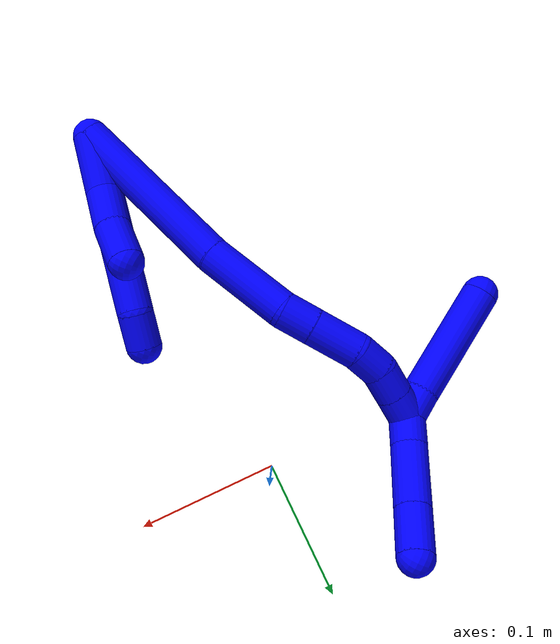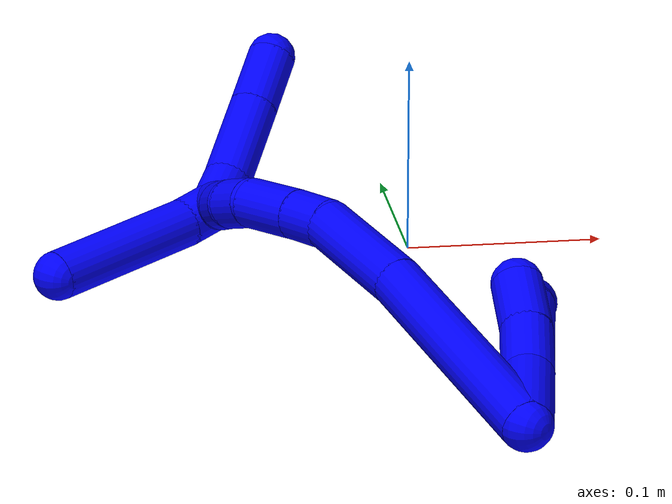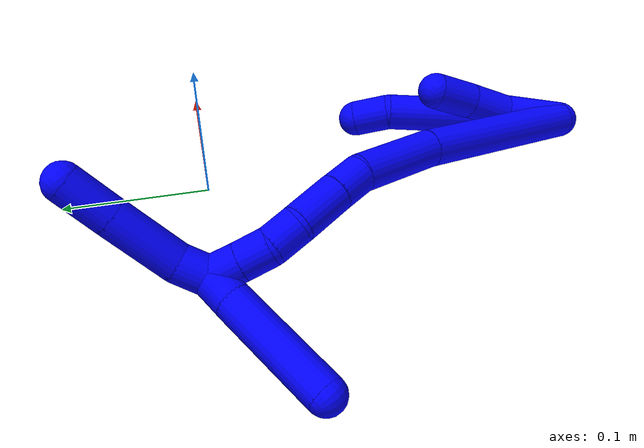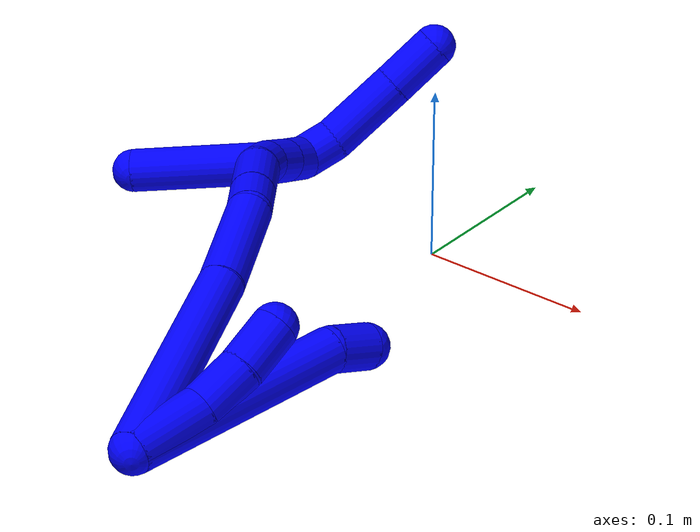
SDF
<sdf version="1.7">
 <world name="default">
  <model name="1">
   <static>0</static>
   <link name="1">
    <collision name="collision-cylinder-e_1_2_8">
     <pose>0.007407 0.047215 -0.040642 -2.28153 0.118342 -0.256896</pose>
     <geometry><cylinder><radius>0.0125</radius><length>0.125474</length></cylinder></geometry>
     <surface>
      <friction><ode><mu>1.16</mu><mu2>1.16</mu2><slip1>0</slip1><slip2>0</slip2></ode></friction>
      <contact><ode><kp>1e+06</kp><kd>1</kd><max_vel>0</max_vel><min_depth>0.001</min_depth></ode></contact>
     </surface>
    </collision>
    <visual name="visual-cylinder-e_1_2_8">
     <pose>0.007407 0.047215 -0.040642 -2.28153 0.118342 -0.256896</pose>
     <geometry><cylinder><radius>0.0125</radius><length>0.125474</length></cylinder></geometry>
     <material><ambient>0 0 1 1</ambient></material>
    </visual>
    <collision name="collision-cylinder-e_2_8_6">
     <pose>0.020325 0.102675 -0.088498 -2.28946 0.466049 -0.963625</pose>
     <geometry><cylinder><radius>0.0125</radius><length>0.024526</length></cylinder></geometry>
     <surface>
      <friction><ode><mu>1.16</mu><mu2>1.16</mu2><slip1>0</slip1><slip2>0</slip2></ode></friction>
      <contact><ode><kp>1e+06</kp><kd>1</kd><max_vel>0</max_vel><min_depth>0.001</min_depth></ode></contact>
     </surface>
    </collision>
    <visual name="visual-cylinder-e_2_8_6">
     <pose>0.020325 0.102675 -0.088498 -2.28946 0.466049 -0.963625</pose>
     <geometry><cylinder><radius>0.0125</radius><length>0.024526</length></cylinder></geometry>
     <material><ambient>0 0 1 1</ambient></material>
    </visual>
    <collision name="collision-cylinder-e_1_2_9">
     <pose>0.000329 0.01603 -0.013361 -2.26563 0.015756 -0.033642</pose>
     <geometry><cylinder><radius>0.0125</radius><length>0.041741</length></cylinder></geometry>
     <surface>
      <friction><ode><mu>1.16</mu><mu2>1.16</mu2><slip1>0</slip1><slip2>0</slip2></ode></friction>
      <contact><ode><kp>1e+06</kp><kd>1</kd><max_vel>0</max_vel><min_depth>0.001</min_depth></ode></contact>
     </surface>
    </collision>
    <visual name="visual-cylinder-e_1_2_9">
     <pose>0.000329 0.01603 -0.013361 -2.26563 0.015756 -0.033642</pose>
     <geometry><cylinder><radius>0.0125</radius><length>0.041741</length></cylinder></geometry>
     <material><ambient>0 0 1 1</ambient></material>
    </visual>
    <collision name="collision-cylinder-e_2_9_10">
     <pose>-0.002686 0.042902 -0.035887 -2.27255 -0.231312 0.490557</pose>
     <geometry><cylinder><radius>0.0125</radius><length>0.029171</length></cylinder></geometry>
     <surface>
      <friction><ode><mu>1.16</mu><mu2>1.16</mu2><slip1>0</slip1><slip2>0</slip2></ode></friction>
      <contact><ode><kp>1e+06</kp><kd>1</kd><max_vel>0</max_vel><min_depth>0.001</min_depth></ode></contact>
     </surface>
    </collision>
    <visual name="visual-cylinder-e_2_9_10">
     <pose>-0.002686 0.042902 -0.035887 -2.27255 -0.231312 0.490557</pose>
     <geometry><cylinder><radius>0.0125</radius><length>0.029171</length></cylinder></geometry>
     <material><ambient>0 0 1 1</ambient></material>
    </visual>
    <collision name="collision-cylinder-e_3_10_5">
     <pose>-0.010193 0.063175 -0.055311 -2.39828 -0.290323 0.717655</pose>
     <geometry><cylinder><radius>0.0125</radius><length>0.029088</length></cylinder></geometry>
     <surface>
      <friction><ode><mu>1.16</mu><mu2>1.16</mu2><slip1>0</slip1><slip2>0</slip2></ode></friction>
      <contact><ode><kp>1e+06</kp><kd>1</kd><max_vel>0</max_vel><min_depth>0.001</min_depth></ode></contact>
     </surface>
    </collision>
    <visual name="visual-cylinder-e_3_10_5">
     <pose>-0.010193 0.063175 -0.055311 -2.39828 -0.290323 0.717655</pose>
     <geometry><cylinder><radius>0.0125</radius><length>0.029088</length></cylinder></geometry>
     <material><ambient>0 0 1 1</ambient></material>
    </visual>
    <collision name="collision-cylinder-e_1_2_11">
     <pose>-0.008257 0.021761 -0.057332 -2.77883 -0.133846 0.700749</pose>
     <geometry><cylinder><radius>0.0125</radius><length>0.123753</length></cylinder></geometry>
     <surface>
      <friction><ode><mu>1.16</mu><mu2>1.16</mu2><slip1>0</slip1><slip2>0</slip2></ode></friction>
      <contact><ode><kp>1e+06</kp><kd>1</kd><max_vel>0</max_vel><min_depth>0.001</min_depth></ode></contact>
     </surface>
    </collision>
    <visual name="visual-cylinder-e_1_2_11">
     <pose>-0.008257 0.021761 -0.057332 -2.77883 -0.133846 0.700749</pose>
     <geometry><cylinder><radius>0.0125</radius><length>0.123753</length></cylinder></geometry>
     <material><ambient>0 0 1 1</ambient></material>
    </visual>
    <collision name="collision-cylinder-e_2_11_12">
     <pose>-0.020218 0.050859 -0.143515 -2.89257 -0.12378 0.919485</pose>
     <geometry><cylinder><radius>0.0125</radius><length>0.059997</length></cylinder></geometry>
     <surface>
      <friction><ode><mu>1.16</mu><mu2>1.16</mu2><slip1>0</slip1><slip2>0</slip2></ode></friction>
      <contact><ode><kp>1e+06</kp><kd>1</kd><max_vel>0</max_vel><min_depth>0.001</min_depth></ode></contact>
     </surface>
    </collision>
    <visual name="visual-cylinder-e_2_11_12">
     <pose>-0.020218 0.050859 -0.143515 -2.89257 -0.12378 0.919485</pose>
     <geometry><cylinder><radius>0.0125</radius><length>0.059997</length></cylinder></geometry>
     <material><ambient>0 0 1 1</ambient></material>
    </visual>
    <collision name="collision-cylinder-e_3_12_13">
     <pose>-0.023324 0.058651 -0.183492 -3.10067 0.05361 -1.83773</pose>
     <geometry><cylinder><radius>0.0125</radius><length>0.022303</length></cylinder></geometry>
     <surface>
      <friction><ode><mu>1.16</mu><mu2>1.16</mu2><slip1>0</slip1><slip2>0</slip2></ode></friction>
      <contact><ode><kp>1e+06</kp><kd>1</kd><max_vel>0</max_vel><min_depth>0.001</min_depth></ode></contact>
     </surface>
    </collision>
    <visual name="visual-cylinder-e_3_12_13">
     <pose>-0.023324 0.058651 -0.183492 -3.10067 0.05361 -1.83773</pose>
     <geometry><cylinder><radius>0.0125</radius><length>0.022303</length></cylinder></geometry>
     <material><ambient>0 0 1 1</ambient></material>
    </visual>
    <collision name="collision-cylinder-e_4_13_14">
     <pose>-0.021176 0.059584 -0.211064 -3.11255 0.093993 -2.54254</pose>
     <geometry><cylinder><radius>0.0125</radius><length>0.033053</length></cylinder></geometry>
     <surface>
      <friction><ode><mu>1.16</mu><mu2>1.16</mu2><slip1>0</slip1><slip2>0</slip2></ode></friction>
      <contact><ode><kp>1e+06</kp><kd>1</kd><max_vel>0</max_vel><min_depth>0.001</min_depth></ode></contact>
     </surface>
    </collision>
    <visual name="visual-cylinder-e_4_13_14">
     <pose>-0.021176 0.059584 -0.211064 -3.11255 0.093993 -2.54254</pose>
     <geometry><cylinder><radius>0.0125</radius><length>0.033053</length></cylinder></geometry>
     <material><ambient>0 0 1 1</ambient></material>
    </visual>
    <collision name="collision-cylinder-e_5_14_15">
     <pose>-0.015943 0.061511 -0.236942 -2.98914 0.368265 -2.36326</pose>
     <geometry><cylinder><radius>0.0125</radius><length>0.020455</length></cylinder></geometry>
     <surface>
      <friction><ode><mu>1.16</mu><mu2>1.16</mu2><slip1>0</slip1><slip2>0</slip2></ode></friction>
      <contact><ode><kp>1e+06</kp><kd>1</kd><max_vel>0</max_vel><min_depth>0.001</min_depth></ode></contact>
     </surface>
    </collision>
    <visual name="visual-cylinder-e_5_14_15">
     <pose>-0.015943 0.061511 -0.236942 -2.98914 0.368265 -2.36326</pose>
     <geometry><cylinder><radius>0.0125</radius><length>0.020455</length></cylinder></geometry>
     <material><ambient>0 0 1 1</ambient></material>
    </visual>
    <collision name="collision-cylinder-e_6_15_16">
     <pose>-0.007534 0.066949 -0.254441 -2.68244 0.483654 -1.62474</pose>
     <geometry><cylinder><radius>0.0125</radius><length>0.020332</length></cylinder></geometry>
     <surface>
      <friction><ode><mu>1.16</mu><mu2>1.16</mu2><slip1>0</slip1><slip2>0</slip2></ode></friction>
      <contact><ode><kp>1e+06</kp><kd>1</kd><max_vel>0</max_vel><min_depth>0.001</min_depth></ode></contact>
     </surface>
    </collision>
    <visual name="visual-cylinder-e_6_15_16">
     <pose>-0.007534 0.066949 -0.254441 -2.68244 0.483654 -1.62474</pose>
     <geometry><cylinder><radius>0.0125</radius><length>0.020332</length></cylinder></geometry>
     <material><ambient>0 0 1 1</ambient></material>
    </visual>
    <collision name="collision-cylinder-e_7_16_1">
     <pose>0.001628 0.075106 -0.270511 -2.66134 0.456764 -1.5188</pose>
     <geometry><cylinder><radius>0.0125</radius><length>0.020108</length></cylinder></geometry>
     <surface>
      <friction><ode><mu>1.16</mu><mu2>1.16</mu2><slip1>0</slip1><slip2>0</slip2></ode></friction>
      <contact><ode><kp>1e+06</kp><kd>1</kd><max_vel>0</max_vel><min_depth>0.001</min_depth></ode></contact>
     </surface>
    </collision>
    <visual name="visual-cylinder-e_7_16_1">
     <pose>0.001628 0.075106 -0.270511 -2.66134 0.456764 -1.5188</pose>
     <geometry><cylinder><radius>0.0125</radius><length>0.020108</length></cylinder></geometry>
     <material><ambient>0 0 1 1</ambient></material>
    </visual>
    <collision name="collision-cylinder-e_1_1_17">
     <pose>0.00606 0.068935 -0.279422 1.65841 -0.000216 -0.000236</pose>
     <geometry><cylinder><radius>0.0125</radius><length>0.020759</length></cylinder></geometry>
     <surface>
      <friction><ode><mu>1.16</mu><mu2>1.16</mu2><slip1>0</slip1><slip2>0</slip2></ode></friction>
      <contact><ode><kp>1e+06</kp><kd>1</kd><max_vel>0</max_vel><min_depth>0.001</min_depth></ode></contact>
     </surface>
    </collision>
    <visual name="visual-cylinder-e_1_1_17">
     <pose>0.00606 0.068935 -0.279422 1.65841 -0.000216 -0.000236</pose>
     <geometry><cylinder><radius>0.0125</radius><length>0.020759</length></cylinder></geometry>
     <material><ambient>0 0 1 1</ambient></material>
    </visual>
    <collision name="collision-cylinder-e_2_17_4">
     <pose>0.001991 0.019412 -0.284559 1.67831 -0.102829 -0.1145</pose>
     <geometry><cylinder><radius>0.0125</radius><length>0.079241</length></cylinder></geometry>
     <surface>
      <friction><ode><mu>1.16</mu><mu2>1.16</mu2><slip1>0</slip1><slip2>0</slip2></ode></friction>
      <contact><ode><kp>1e+06</kp><kd>1</kd><max_vel>0</max_vel><min_depth>0.001</min_depth></ode></contact>
     </surface>
    </collision>
    <visual name="visual-cylinder-e_2_17_4">
     <pose>0.001991 0.019412 -0.284559 1.67831 -0.102829 -0.1145</pose>
     <geometry><cylinder><radius>0.0125</radius><length>0.079241</length></cylinder></geometry>
     <material><ambient>0 0 1 1</ambient></material>
    </visual>
    <collision name="collision-cylinder-e_1_1_18">
     <pose>0.004465 0.088514 -0.282993 -2.02226 -0.154294 0.245535</pose>
     <geometry><cylinder><radius>0.0125</radius><length>0.020783</length></cylinder></geometry>
     <surface>
      <friction><ode><mu>1.16</mu><mu2>1.16</mu2><slip1>0</slip1><slip2>0</slip2></ode></friction>
      <contact><ode><kp>1e+06</kp><kd>1</kd><max_vel>0</max_vel><min_depth>0.001</min_depth></ode></contact>
     </surface>
    </collision>
    <visual name="visual-cylinder-e_1_1_18">
     <pose>0.004465 0.088514 -0.282993 -2.02226 -0.154294 0.245535</pose>
     <geometry><cylinder><radius>0.0125</radius><length>0.020783</length></cylinder></geometry>
     <material><ambient>0 0 1 1</ambient></material>
    </visual>
    <collision name="collision-cylinder-e_2_18_19">
     <pose>-0.006823 0.117574 -0.295106 -1.93836 -0.428075 0.61328</pose>
     <geometry><cylinder><radius>0.0125</radius><length>0.046692</length></cylinder></geometry>
     <surface>
      <friction><ode><mu>1.16</mu><mu2>1.16</mu2><slip1>0</slip1><slip2>0</slip2></ode></friction>
      <contact><ode><kp>1e+06</kp><kd>1</kd><max_vel>0</max_vel><min_depth>0.001</min_depth></ode></contact>
     </surface>
    </collision>
    <visual name="visual-cylinder-e_2_18_19">
     <pose>-0.006823 0.117574 -0.295106 -1.93836 -0.428075 0.61328</pose>
     <geometry><cylinder><radius>0.0125</radius><length>0.046692</length></cylinder></geometry>
     <material><ambient>0 0 1 1</ambient></material>
    </visual>
    <collision name="collision-cylinder-e_3_19_3">
     <pose>-0.023554 0.151112 -0.307911 -1.9314 -0.447646 0.635916</pose>
     <geometry><cylinder><radius>0.0125</radius><length>0.032525</length></cylinder></geometry>
     <surface>
      <friction><ode><mu>1.16</mu><mu2>1.16</mu2><slip1>0</slip1><slip2>0</slip2></ode></friction>
      <contact><ode><kp>1e+06</kp><kd>1</kd><max_vel>0</max_vel><min_depth>0.001</min_depth></ode></contact>
     </surface>
    </collision>
    <visual name="visual-cylinder-e_3_19_3">
     <pose>-0.023554 0.151112 -0.307911 -1.9314 -0.447646 0.635916</pose>
     <geometry><cylinder><radius>0.0125</radius><length>0.032525</length></cylinder></geometry>
     <material><ambient>0 0 1 1</ambient></material>
    </visual>
    <collision name="collision-sphere-3">
     <pose>-0.030593 0.164829 -0.313083 0 -0 0</pose>
     <geometry><sphere><radius>0.0125</radius></sphere></geometry>
     <surface>
      <friction><ode><mu>1.16</mu><mu2>1.16</mu2><slip1>0</slip1><slip2>0</slip2></ode></friction>
      <contact><ode><kp>1e+06</kp><kd>1</kd><max_vel>0</max_vel><min_depth>0.001</min_depth></ode></contact>
     </surface>
    </collision>
    <visual name="visual-sphere-3">
     <pose>-0.030593 0.164829 -0.313083 0 -0 0</pose>
     <geometry><sphere><radius>0.0125</radius></sphere></geometry>
     <material><ambient>0 0 1 1</ambient></material>
    </visual>
    <collision name="collision-sphere-19">
     <pose>-0.016515 0.137395 -0.302738 0 -0 0</pose>
     <geometry><sphere><radius>0.0125</radius></sphere></geometry>
     <surface>
      <friction><ode><mu>1.16</mu><mu2>1.16</mu2><slip1>0</slip1><slip2>0</slip2></ode></friction>
      <contact><ode><kp>1e+06</kp><kd>1</kd><max_vel>0</max_vel><min_depth>0.001</min_depth></ode></contact>
     </surface>
    </collision>
    <visual name="visual-sphere-19">
     <pose>-0.016515 0.137395 -0.302738 0 -0 0</pose>
     <geometry><sphere><radius>0.0125</radius></sphere></geometry>
     <material><ambient>0 0 1 1</ambient></material>
    </visual>
    <collision name="collision-sphere-5">
     <pose>-0.014357 0.072606 -0.065571 0 -0 0</pose>
     <geometry><sphere><radius>0.0125</radius></sphere></geometry>
     <surface>
      <friction><ode><mu>1.16</mu><mu2>1.16</mu2><slip1>0</slip1><slip2>0</slip2></ode></friction>
      <contact><ode><kp>1e+06</kp><kd>1</kd><max_vel>0</max_vel><min_depth>0.001</min_depth></ode></contact>
     </surface>
    </collision>
    <visual name="visual-sphere-5">
     <pose>-0.014357 0.072606 -0.065571 0 -0 0</pose>
     <geometry><sphere><radius>0.0125</radius></sphere></geometry>
     <material><ambient>0 0 1 1</ambient></material>
    </visual>
    <collision name="collision-sphere-10">
     <pose>-0.00603 0.053745 -0.045052 0 -0 0</pose>
     <geometry><sphere><radius>0.0125</radius></sphere></geometry>
     <surface>
      <friction><ode><mu>1.16</mu><mu2>1.16</mu2><slip1>0</slip1><slip2>0</slip2></ode></friction>
      <contact><ode><kp>1e+06</kp><kd>1</kd><max_vel>0</max_vel><min_depth>0.001</min_depth></ode></contact>
     </surface>
    </collision>
    <visual name="visual-sphere-10">
     <pose>-0.00603 0.053745 -0.045052 0 -0 0</pose>
     <geometry><sphere><radius>0.0125</radius></sphere></geometry>
     <material><ambient>0 0 1 1</ambient></material>
    </visual>
    <collision name="collision-sphere-6">
     <pose>0.025835 0.110921 -0.09571 0 -0 0</pose>
     <geometry><sphere><radius>0.0125</radius></sphere></geometry>
     <surface>
      <friction><ode><mu>1.16</mu><mu2>1.16</mu2><slip1>0</slip1><slip2>0</slip2></ode></friction>
      <contact><ode><kp>1e+06</kp><kd>1</kd><max_vel>0</max_vel><min_depth>0.001</min_depth></ode></contact>
     </surface>
    </collision>
    <visual name="visual-sphere-6">
     <pose>0.025835 0.110921 -0.09571 0 -0 0</pose>
     <geometry><sphere><radius>0.0125</radius></sphere></geometry>
     <material><ambient>0 0 1 1</ambient></material>
    </visual>
    <collision name="collision-sphere-9">
     <pose>0.000658 0.03206 -0.026722 0 -0 0</pose>
     <geometry><sphere><radius>0.0125</radius></sphere></geometry>
     <surface>
      <friction><ode><mu>1.16</mu><mu2>1.16</mu2><slip1>0</slip1><slip2>0</slip2></ode></friction>
      <contact><ode><kp>1e+06</kp><kd>1</kd><max_vel>0</max_vel><min_depth>0.001</min_depth></ode></contact>
     </surface>
    </collision>
    <visual name="visual-sphere-9">
     <pose>0.000658 0.03206 -0.026722 0 -0 0</pose>
     <geometry><sphere><radius>0.0125</radius></sphere></geometry>
     <material><ambient>0 0 1 1</ambient></material>
    </visual>
    <collision name="collision-sphere-2">
     <geometry><sphere><radius>0.0125</radius></sphere></geometry>
     <surface>
      <friction><ode><mu>1.16</mu><mu2>1.16</mu2><slip1>0</slip1><slip2>0</slip2></ode></friction>
      <contact><ode><kp>1e+06</kp><kd>1</kd><max_vel>0</max_vel><min_depth>0.001</min_depth></ode></contact>
     </surface>
    </collision>
    <visual name="visual-sphere-2">
     <geometry><sphere><radius>0.0125</radius></sphere></geometry>
     <material><ambient>0 0 1 1</ambient></material>
    </visual>
    <collision name="collision-sphere-8">
     <pose>0.014814 0.09443 -0.081285 0 -0 0</pose>
     <geometry><sphere><radius>0.0125</radius></sphere></geometry>
     <surface>
      <friction><ode><mu>1.16</mu><mu2>1.16</mu2><slip1>0</slip1><slip2>0</slip2></ode></friction>
      <contact><ode><kp>1e+06</kp><kd>1</kd><max_vel>0</max_vel><min_depth>0.001</min_depth></ode></contact>
     </surface>
    </collision>
    <visual name="visual-sphere-8">
     <pose>0.014814 0.09443 -0.081285 0 -0 0</pose>
     <geometry><sphere><radius>0.0125</radius></sphere></geometry>
     <material><ambient>0 0 1 1</ambient></material>
    </visual>
    <collision name="collision-sphere-11">
     <pose>-0.016514 0.043522 -0.114664 0 -0 0</pose>
     <geometry><sphere><radius>0.0125</radius></sphere></geometry>
     <surface>
      <friction><ode><mu>1.16</mu><mu2>1.16</mu2><slip1>0</slip1><slip2>0</slip2></ode></friction>
      <contact><ode><kp>1e+06</kp><kd>1</kd><max_vel>0</max_vel><min_depth>0.001</min_depth></ode></contact>
     </surface>
    </collision>
    <visual name="visual-sphere-11">
     <pose>-0.016514 0.043522 -0.114664 0 -0 0</pose>
     <geometry><sphere><radius>0.0125</radius></sphere></geometry>
     <material><ambient>0 0 1 1</ambient></material>
    </visual>
    <collision name="collision-sphere-12">
     <pose>-0.023922 0.058195 -0.172366 0 -0 0</pose>
     <geometry><sphere><radius>0.0125</radius></sphere></geometry>
     <surface>
      <friction><ode><mu>1.16</mu><mu2>1.16</mu2><slip1>0</slip1><slip2>0</slip2></ode></friction>
      <contact><ode><kp>1e+06</kp><kd>1</kd><max_vel>0</max_vel><min_depth>0.001</min_depth></ode></contact>
     </surface>
    </collision>
    <visual name="visual-sphere-12">
     <pose>-0.023922 0.058195 -0.172366 0 -0 0</pose>
     <geometry><sphere><radius>0.0125</radius></sphere></geometry>
     <material><ambient>0 0 1 1</ambient></material>
    </visual>
    <collision name="collision-sphere-13">
     <pose>-0.022727 0.059107 -0.194618 0 -0 0</pose>
     <geometry><sphere><radius>0.0125</radius></sphere></geometry>
     <surface>
      <friction><ode><mu>1.16</mu><mu2>1.16</mu2><slip1>0</slip1><slip2>0</slip2></ode></friction>
      <contact><ode><kp>1e+06</kp><kd>1</kd><max_vel>0</max_vel><min_depth>0.001</min_depth></ode></contact>
     </surface>
    </collision>
    <visual name="visual-sphere-13">
     <pose>-0.022727 0.059107 -0.194618 0 -0 0</pose>
     <geometry><sphere><radius>0.0125</radius></sphere></geometry>
     <material><ambient>0 0 1 1</ambient></material>
    </visual>
    <collision name="collision-sphere-14">
     <pose>-0.019625 0.060062 -0.227511 0 -0 0</pose>
     <geometry><sphere><radius>0.0125</radius></sphere></geometry>
     <surface>
      <friction><ode><mu>1.16</mu><mu2>1.16</mu2><slip1>0</slip1><slip2>0</slip2></ode></friction>
      <contact><ode><kp>1e+06</kp><kd>1</kd><max_vel>0</max_vel><min_depth>0.001</min_depth></ode></contact>
     </surface>
    </collision>
    <visual name="visual-sphere-14">
     <pose>-0.019625 0.060062 -0.227511 0 -0 0</pose>
     <geometry><sphere><radius>0.0125</radius></sphere></geometry>
     <material><ambient>0 0 1 1</ambient></material>
    </visual>
    <collision name="collision-sphere-15">
     <pose>-0.012261 0.06296 -0.246373 0 -0 0</pose>
     <geometry><sphere><radius>0.0125</radius></sphere></geometry>
     <surface>
      <friction><ode><mu>1.16</mu><mu2>1.16</mu2><slip1>0</slip1><slip2>0</slip2></ode></friction>
      <contact><ode><kp>1e+06</kp><kd>1</kd><max_vel>0</max_vel><min_depth>0.001</min_depth></ode></contact>
     </surface>
    </collision>
    <visual name="visual-sphere-15">
     <pose>-0.012261 0.06296 -0.246373 0 -0 0</pose>
     <geometry><sphere><radius>0.0125</radius></sphere></geometry>
     <material><ambient>0 0 1 1</ambient></material>
    </visual>
    <collision name="collision-sphere-16">
     <pose>-0.002806 0.070938 -0.262509 0 -0 0</pose>
     <geometry><sphere><radius>0.0125</radius></sphere></geometry>
     <surface>
      <friction><ode><mu>1.16</mu><mu2>1.16</mu2><slip1>0</slip1><slip2>0</slip2></ode></friction>
      <contact><ode><kp>1e+06</kp><kd>1</kd><max_vel>0</max_vel><min_depth>0.001</min_depth></ode></contact>
     </surface>
    </collision>
    <visual name="visual-sphere-16">
     <pose>-0.002806 0.070938 -0.262509 0 -0 0</pose>
     <geometry><sphere><radius>0.0125</radius></sphere></geometry>
     <material><ambient>0 0 1 1</ambient></material>
    </visual>
    <collision name="collision-sphere-1">
     <pose>0.006062 0.079275 -0.278514 0 -0 0</pose>
     <geometry><sphere><radius>0.0125</radius></sphere></geometry>
     <surface>
      <friction><ode><mu>1.16</mu><mu2>1.16</mu2><slip1>0</slip1><slip2>0</slip2></ode></friction>
      <contact><ode><kp>1e+06</kp><kd>1</kd><max_vel>0</max_vel><min_depth>0.001</min_depth></ode></contact>
     </surface>
    </collision>
    <visual name="visual-sphere-1">
     <pose>0.006062 0.079275 -0.278514 0 -0 0</pose>
     <geometry><sphere><radius>0.0125</radius></sphere></geometry>
     <material><ambient>0 0 1 1</ambient></material>
    </visual>
    <collision name="collision-sphere-18">
     <pose>0.002868 0.097754 -0.287473 0 -0 0</pose>
     <geometry><sphere><radius>0.0125</radius></sphere></geometry>
     <surface>
      <friction><ode><mu>1.16</mu><mu2>1.16</mu2><slip1>0</slip1><slip2>0</slip2></ode></friction>
      <contact><ode><kp>1e+06</kp><kd>1</kd><max_vel>0</max_vel><min_depth>0.001</min_depth></ode></contact>
     </surface>
    </collision>
    <visual name="visual-sphere-18">
     <pose>0.002868 0.097754 -0.287473 0 -0 0</pose>
     <geometry><sphere><radius>0.0125</radius></sphere></geometry>
     <material><ambient>0 0 1 1</ambient></material>
    </visual>
    <collision name="collision-sphere-17">
     <pose>0.006058 0.058596 -0.28033 0 -0 0</pose>
     <geometry><sphere><radius>0.0125</radius></sphere></geometry>
     <surface>
      <friction><ode><mu>1.16</mu><mu2>1.16</mu2><slip1>0</slip1><slip2>0</slip2></ode></friction>
      <contact><ode><kp>1e+06</kp><kd>1</kd><max_vel>0</max_vel><min_depth>0.001</min_depth></ode></contact>
     </surface>
    </collision>
    <visual name="visual-sphere-17">
     <pose>0.006058 0.058596 -0.28033 0 -0 0</pose>
     <geometry><sphere><radius>0.0125</radius></sphere></geometry>
     <material><ambient>0 0 1 1</ambient></material>
    </visual>
    <collision name="collision-sphere-4">
     <pose>-0.002076 -0.019772 -0.288788 0 -0 0</pose>
     <geometry><sphere><radius>0.0125</radius></sphere></geometry>
     <surface>
      <friction><ode><mu>1.16</mu><mu2>1.16</mu2><slip1>0</slip1><slip2>0</slip2></ode></friction>
      <contact><ode><kp>1e+06</kp><kd>1</kd><max_vel>0</max_vel><min_depth>0.001</min_depth></ode></contact>
     </surface>
    </collision>
    <visual name="visual-sphere-4">
     <pose>-0.002076 -0.019772 -0.288788 0 -0 0</pose>
     <geometry><sphere><radius>0.0125</radius></sphere></geometry>
     <material><ambient>0 0 1 1</ambient></material>
    </visual>
    <inertial>
     <pose>-0.004724 0.054088 -0.147655 0 -0 0</pose>
     <mass>0.75</mass>
     <inertia>
      <ixx>0.000437</ixx>
      <ixy>0</ixy>
      <ixz>0</ixz>
      <iyy>-0.000141</iyy>
      <iyz>0</iyz>
      <izz>-0.000196</izz>
     </inertia>
    </inertial>
   </link>
   <pose>0.014006 -0.259612 0.011497 1.60734 1.34864 0.710117</pose>
  </model>
 </world>
</sdf>
